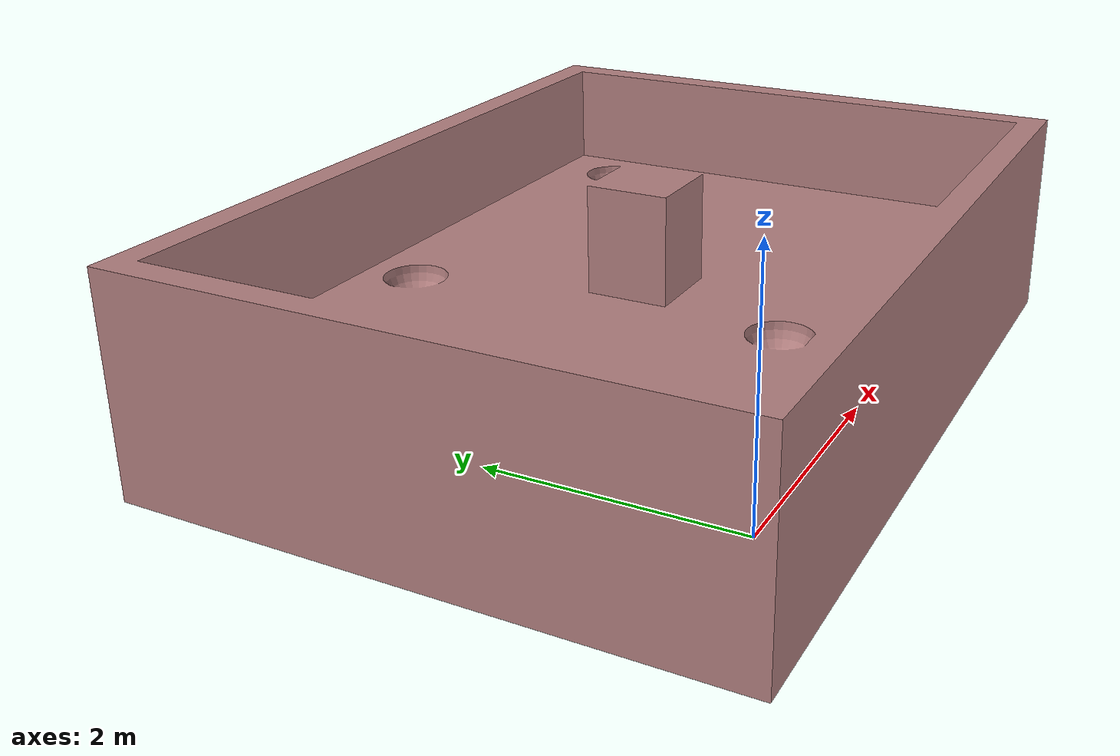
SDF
<?xml version="1.0" ?>
<sdf version='1.4'>
  <model name="arena">
      <static>1</static>
      <link name='link'>
        <inertial>
          <mass>0.25</mass>
          <inertia>
            <ixx>0.00015</ixx>
            <ixy>0.000000</ixy>
            <ixz>0.000000</ixz>
            <iyy>0.00015</iyy>
            <iyz>0.000000</iyz>
            <izz>0.00015</izz>
          </inertia>
        </inertial>
        <collision name='collision'>
          <geometry>
            <mesh>
              <uri>model://arena/meshes/arena.obj</uri>
              <scale>1 1 1</scale>
            </mesh>
          </geometry>
          <surface>
            <friction>
              <ode>
                <mu>30.0</mu>
                <mu2>30.0</mu2>
              </ode>
            </friction>
            <contact>
              <ode>
                <kp>1000000.0</kp>
                <kd>100.0</kd>
                <max_vel>1.0</max_vel>
                <min_depth>0.002</min_depth>
              </ode>
            </contact>
          </surface>
        </collision>
        <visual name='visual'>
          <geometry>
            <mesh>
              <uri>model://arena/meshes/arena.obj</uri>
              <scale>1 1 1</scale>
            </mesh>
          </geometry>
          <material>
            <ambient>0.7 0.5 0.5 1</ambient>   <!-- Grey ambient color -->
            <diffuse>0.7 0.5 0.5 1</diffuse>   <!-- Grey diffuse color -->
            <specular>0.1 0.1 0.1 1</specular> <!-- Low specular highlights -->
            <emissive>0 0 0 0</emissive>       <!-- Non-emissive -->
          </material>
        </visual>
        <velocity_decay>
          <linear>0.000000</linear>
          <angular>0.000000</angular>
        </velocity_decay>
        <self_collide>0</self_collide>
        <kinematic>0</kinematic>
        <gravity>1</gravity>
      </link>
  </model>
</sdf>
